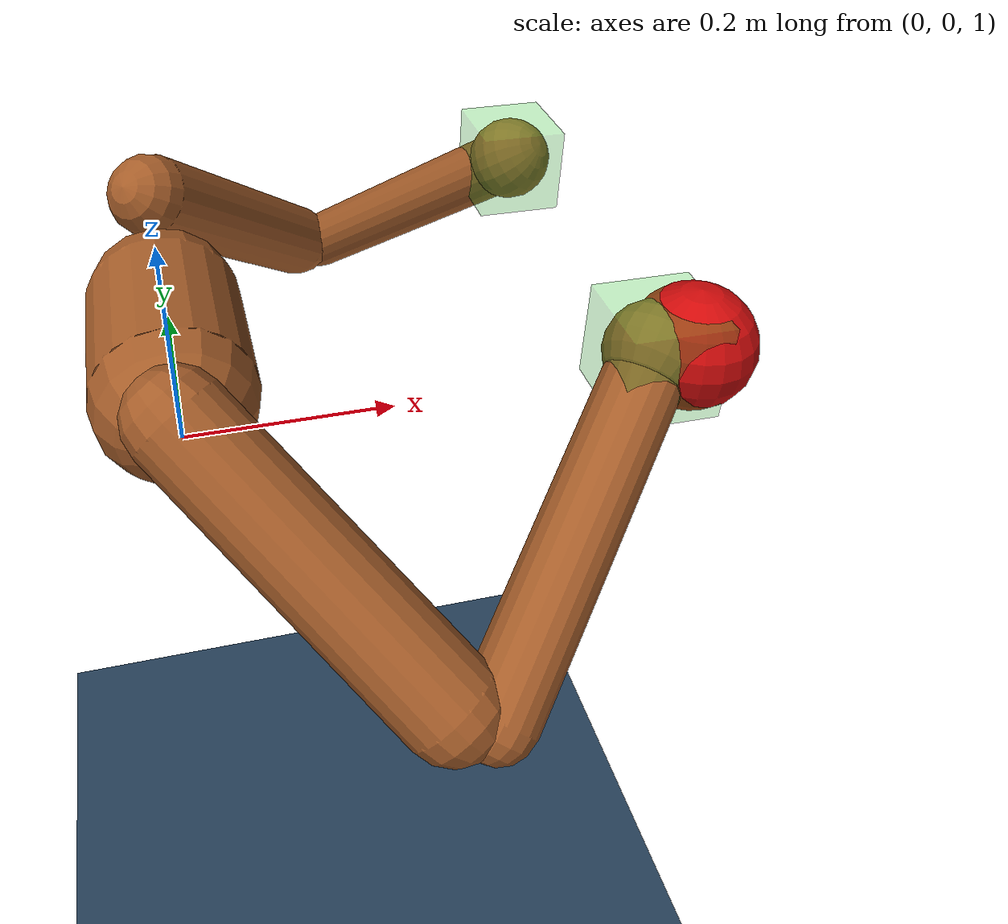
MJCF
<mujoco model="Humanoid-ArmsOnly-Juggler">
  <option timestep="0.005" gravity="0 0 -9.81"/>

  <visual>
    <map force="0.1" zfar="30"/>
    <rgba haze="0.15 0.25 0.35 1"/>
    <global offwidth="2560" offheight="1440" elevation="-20" azimuth="120"/>
  </visual>

  <statistic center="0 0 1"/>

  <asset>
    <texture type="skybox" builtin="gradient" rgb1=".3 .5 .7" rgb2="0 0 0" width="32" height="512"/>
    <texture name="body" type="cube" builtin="flat" mark="cross" width="128" height="128" rgb1="0.8 0.6 0.4" rgb2="0.8 0.6 0.4" markrgb="1 1 1"/>
    <material name="body" texture="body" texuniform="true" rgba="0.8 0.6 .4 1"/>

    <texture name="grid" type="2d" builtin="checker" width="512" height="512" rgb1=".1 .2 .3" rgb2=".2 .3 .4"/>
    <material name="grid" texture="grid" texrepeat="1 1" texuniform="true" reflectance=".2"/>

    <texture name="ball_tex" type="cube" builtin="flat" width="64" height="64" rgb1=".9 .2 .2" rgb2=".9 .2 .2"/>
    <material name="ball_mat" texture="ball_tex" texuniform="true" rgba=".9 .2 .2 1"/>
  </asset>

  <default>
    <!-- motor defaults -->
    <motor ctrlrange="-1 1" ctrllimited="true"/>

    <!-- body defaults -->
    <default class="body">
      <geom type="capsule" condim="1" friction=".7 .005 .0001" solimp=".9 .99 .003" solref=".015 1" material="body" group="1"/>
      <default class="arm_upper"><geom size=".04"/></default>
      <default class="arm_lower"><geom size=".031"/></default>
      <default class="hand"><geom type="sphere" size=".04"/></default>

      <!-- joints -->
      <joint type="hinge" damping=".2" stiffness="1" armature=".01" limited="true" solimplimit="0 .99 .01"/>

      <default class="shoulder"><joint range="-85 60"/></default>
      <default class="elbow"><joint range="-100 50" stiffness="0"/></default>
      <default class="wrist"><joint range="-90 90" stiffness="0.5"/></default>
    </default>
  </default>

  <worldbody>
    <geom name="floor" size="0 0 .05" type="plane" material="grid" condim="3"/>
    <light name="top" pos="0 0 3" mode="trackcom"/>

    <!-- Torso root - completely fixed (no joints = fixed body) -->
    <body name="torso" pos="0 0 1.1" childclass="body">
      <!-- No joints = fixed body that cannot move or rotate -->
      <geom name="torso" fromto="0 -.07 0 0 .07 0" size=".07"/>

      <!-- Right Arm -->
      <body name="upper_arm_right" pos="0 -.17 .06">
        <joint name="shoulder1_right" axis="2 1 1" class="shoulder"/>
        <joint name="shoulder2_right" axis="0 -1 1" class="shoulder"/>
        <geom  name="upper_arm_right" fromto="0 0 0 .16 -.16 -.16" class="arm_upper"/>

        <body name="lower_arm_right" pos=".18 -.18 -.18">
          <joint name="elbow_right" axis="0 -1 1" class="elbow"/>
          <geom  name="lower_arm_right" fromto=".01 .01 .01 .17 .17 .17" class="arm_lower"/>

          <body name="hand_right" pos=".18 .18 .18">
            <joint name="wrist_right" axis="1 0 0" class="wrist"/>
            <geom  name="hand_right" zaxis="1 1 1" class="hand"/>
            <!-- Palm site slightly forward of hand sphere center -->
            <site name="palm_right"
                  type="box"
                  pos="0 0 0"
                  size="0.04 0.04 0.04"
                  rgba=".2 .8 .2 .3"/>
            </body>
        </body>
      </body>

      <!-- Left Arm -->
      <body name="upper_arm_left" pos="0 .17 .06">
        <joint name="shoulder1_left" axis="-2 1 -1" class="shoulder"/>
        <joint name="shoulder2_left" axis="0 -1 -1"  class="shoulder"/>
        <geom  name="upper_arm_left" fromto="0 0 0 .16 .16 -.16" class="arm_upper"/>

        <body name="lower_arm_left" pos=".18 .18 -.18">
          <joint name="elbow_left" axis="0 -1 -1" class="elbow"/>
          <geom  name="lower_arm_left" fromto=".01 -.01 .01 .17 -.17 .17" class="arm_lower"/>

          <body name="hand_left" pos=".18 -.18 .18">
            <joint name="wrist_left" axis="1 0 0" class="wrist"/>
            <geom  name="hand_left" zaxis="1 -1 1" class="hand"/>
            <site name="palm_left"
                  type="box"
                  pos="0 0 0"
                  size="0.04 0.04 0.04"
                  rgba=".2 .8 .2 .3"/>
          </body>
        </body>
      </body>
    </body>

    <!-- Ball (free-floating) - positioned at right hand palm initially -->
    <body name="ball1" pos="0.39 -0.17 1.16">
      <freejoint/>
      <geom name="ball1_geom" type="sphere" size="0.05" material="ball_mat"
            density="1200" friction="1.2 .01 .0001" solimp=".95 .99 .001" solref=".01 1"/>
      <site name="ball1_site" pos="0 0 0" size="0.01" rgba=".8 .2 .2 1"/>
    </body>
  </worldbody>

  <!-- weld constraints used for "catching": start with ball1 attached to right hand -->
  <equality>
    <!-- Right hand catch constraint - start active with ball1 attached -->
    <weld name="catch_right_ball1" active="true" body1="hand_right" body2="ball1" solimp=".95 .99 .001" solref=".01 1"/>

    <!-- Left hand catch constraint -->
    <weld name="catch_left_ball1"  active="false" body1="hand_left"  body2="ball1" solimp=".95 .99 .001" solref=".01 1"/>
  </equality>

  <!-- Arm/hand actuators and catch/release controls -->
  <actuator>
    <!-- Right arm -->
    <motor name="shoulder1_right" gear="20"  joint="shoulder1_right"/>
    <motor name="shoulder2_right" gear="20"  joint="shoulder2_right"/>
    <motor name="elbow_right"     gear="40"  joint="elbow_right"/>
    <motor name="wrist_right"     gear="10"  joint="wrist_right"/>

    <!-- Left arm -->
    <motor name="shoulder1_left"  gear="20"  joint="shoulder1_left"/>
    <motor name="shoulder2_left"  gear="20"  joint="shoulder2_left"/>
    <motor name="elbow_left"      gear="40"  joint="elbow_left"/>
    <motor name="wrist_left"      gear="10"  joint="wrist_left"/>

  </actuator>

  <!-- Touch sensors for catch detection -->
  <sensor>
  <!-- Right hand vs ball -->
  <contact name="touch_right_ball1" geom1="hand_right" geom2="ball1_geom"/>

  <!-- Left hand vs ball -->
  <contact name="touch_left_ball1"  geom1="hand_left"  geom2="ball1_geom"/>
</sensor>

</mujoco>
